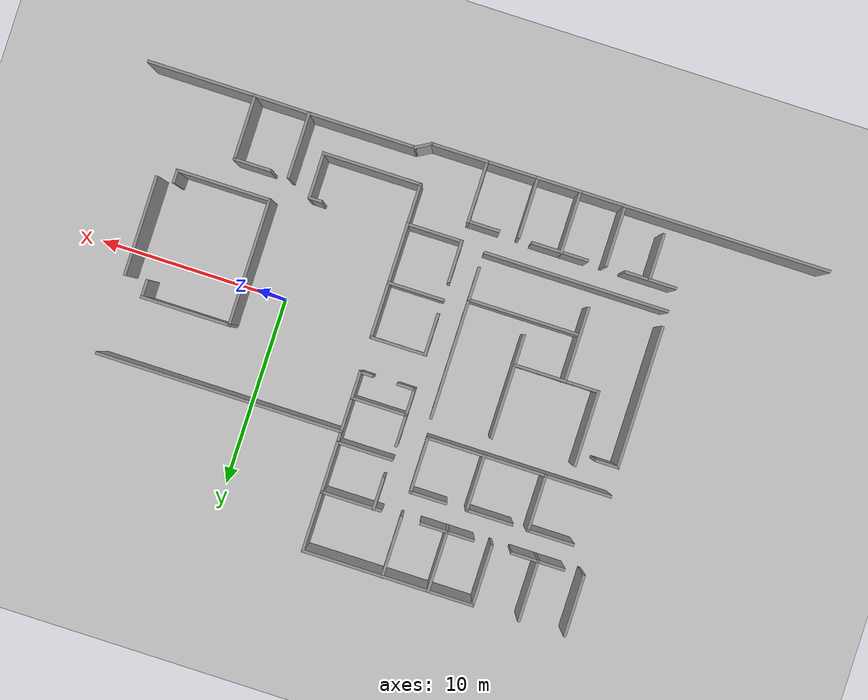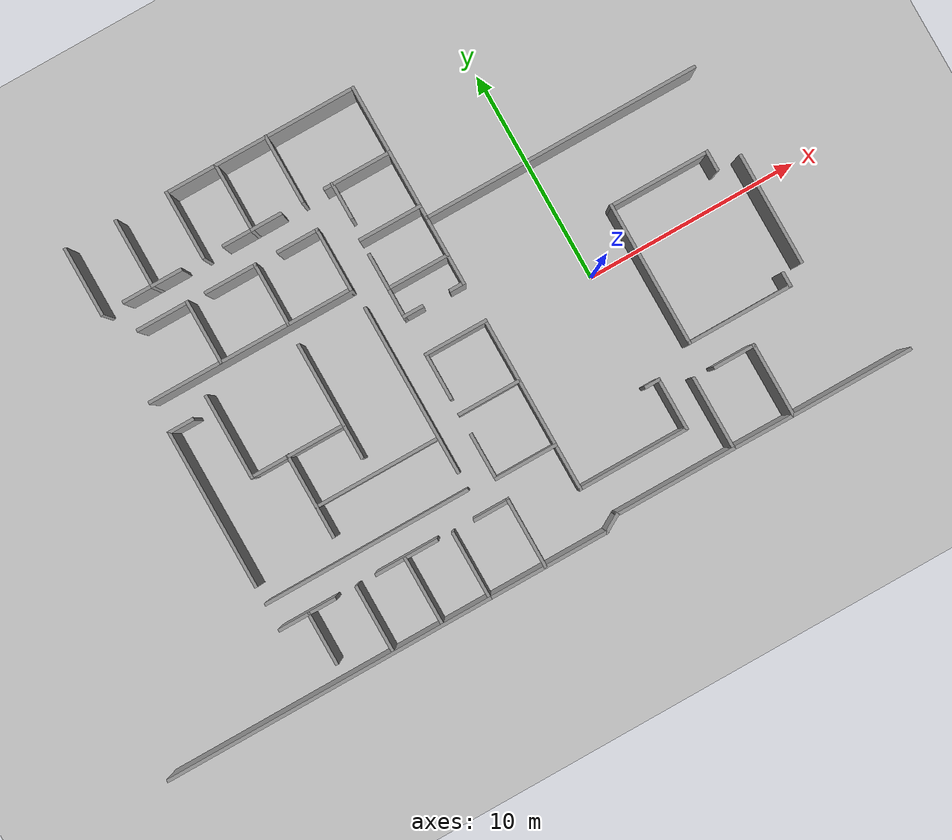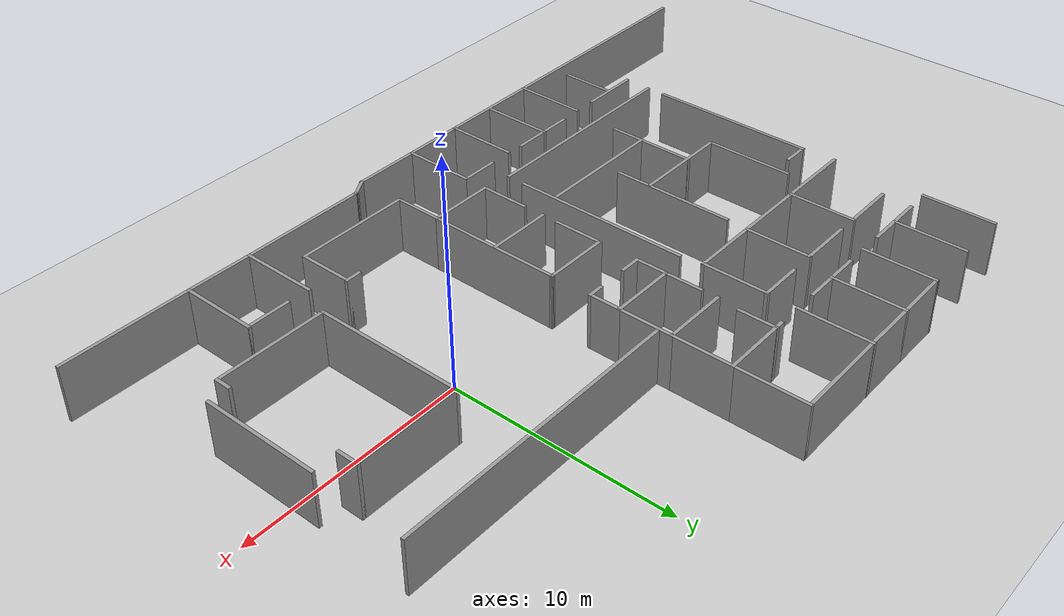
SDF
<sdf version="1.6">
 <world name="default">
  <model name="ground_plane">
   <static>1</static>
   <link name="link">
    <collision name="collision">
     <geometry><plane><normal>0 0 1</normal><size>100 100</size></plane></geometry>
     <surface>
      <contact><collide_bitmask>65535</collide_bitmask></contact>
      <friction><ode><mu>100</mu><mu2>50</mu2></ode></friction>
     </surface>
    </collision>
    <visual name="visual">
     <cast_shadows>0</cast_shadows>
     <geometry><plane><normal>0 0 1</normal><size>100 100</size></plane></geometry>
     <material>
      <script><uri>file://media/materials/scripts/gazebo.material</uri><name>Gazebo/Grey</name></script>
     </material>
    </visual>
   </link>
  </model>
  <model name="large_version">
   <pose>-3.01766 -0.701661 0 0 -0 0</pose>
   <link name="Wall_12">
    <collision name="Wall_12_Collision">
     <geometry><box><size>3.25 0.15 2.5</size></box></geometry>
     <pose>0 0 1.25 0 -0 0</pose>
    </collision>
    <visual name="Wall_12_Visual">
     <pose>0 0 1.25 0 -0 0</pose>
     <geometry><box><size>3.25 0.15 2.5</size></box></geometry>
     <material>
      <script><uri>file://media/materials/scripts/gazebo.material</uri><name>Gazebo/Grey</name></script>
      <ambient>1 1 1 1</ambient>
     </material>
     <meta><layer>0</layer></meta>
    </visual>
    <pose>-10.928 10.8658 0 0 -0 -1.5708</pose>
   </link>
   <link name="Wall_138">
    <collision name="Wall_138_Collision">
     <geometry><box><size>15.5 0.15 2.5</size></box></geometry>
     <pose>0 0 1.25 0 -0 0</pose>
    </collision>
    <visual name="Wall_138_Visual">
     <pose>0 0 1.25 0 -0 0</pose>
     <geometry><box><size>15.5 0.15 2.5</size></box></geometry>
     <material>
      <script><uri>file://media/materials/scripts/gazebo.material</uri><name>Gazebo/Grey</name></script>
      <ambient>1 1 1 1</ambient>
     </material>
     <meta><layer>0</layer></meta>
    </visual>
    <pose>-15.1727 -8.99166 0 0 -0 0</pose>
   </link>
   <link name="Wall_157">
    <collision name="Wall_157_Collision">
     <geometry><box><size>2.75 0.15 2.5</size></box></geometry>
     <pose>0 0 1.25 0 -0 0</pose>
    </collision>
    <visual name="Wall_157_Visual">
     <pose>0 0 1.25 0 -0 0</pose>
     <geometry><box><size>2.75 0.15 2.5</size></box></geometry>
     <material>
      <script><uri>file://media/materials/scripts/gazebo.material</uri><name>Gazebo/Grey</name></script>
      <ambient>1 1 1 1</ambient>
     </material>
     <meta><layer>0</layer></meta>
    </visual>
    <pose>-14.4527 -5.83091 0 0 -0 0</pose>
   </link>
   <link name="Wall_159">
    <collision name="Wall_159_Collision">
     <geometry><box><size>2.5 0.15 2.5</size></box></geometry>
     <pose>0 0 1.25 0 -0 0</pose>
    </collision>
    <visual name="Wall_159_Visual">
     <pose>0 0 1.25 0 -0 0</pose>
     <geometry><box><size>2.5 0.15 2.5</size></box></geometry>
     <material>
      <script><uri>file://media/materials/scripts/gazebo.material</uri><name>Gazebo/Grey</name></script>
      <ambient>1 1 1 1</ambient>
     </material>
     <meta><layer>0</layer></meta>
    </visual>
    <pose>-14.3882 -7.02107 0 0 -0 -1.5708</pose>
   </link>
   <link name="Wall_161">
    <collision name="Wall_161_Collision">
     <geometry><box><size>3.25 0.15 2.5</size></box></geometry>
     <pose>0 0 1.25 0 -0 0</pose>
    </collision>
    <visual name="Wall_161_Visual">
     <pose>0 0 1.25 0 -0 0</pose>
     <geometry><box><size>3.25 0.15 2.5</size></box></geometry>
     <material>
      <script><uri>file://media/materials/scripts/gazebo.material</uri><name>Gazebo/Grey</name></script>
      <ambient>1 1 1 1</ambient>
     </material>
     <meta><layer>0</layer></meta>
    </visual>
    <pose>-12.099 -7.41123 0 0 -0 -1.5708</pose>
   </link>
   <link name="Wall_163">
    <collision name="Wall_163_Collision">
     <geometry><box><size>3 0.15 2.5</size></box></geometry>
     <pose>0 0 1.25 0 -0 0</pose>
    </collision>
    <visual name="Wall_163_Visual">
     <pose>0 0 1.25 0 -0 0</pose>
     <geometry><box><size>3 0.15 2.5</size></box></geometry>
     <material>
      <script><uri>file://media/materials/scripts/gazebo.material</uri><name>Gazebo/Grey</name></script>
      <ambient>1 1 1 1</ambient>
     </material>
     <meta><layer>0</layer></meta>
    </visual>
    <pose>-9.68851 -5.80059 0 0 -0 0</pose>
   </link>
   <link name="Wall_165">
    <collision name="Wall_165_Collision">
     <geometry><box><size>3.25 0.15 2.5</size></box></geometry>
     <pose>0 0 1.25 0 -0 0</pose>
    </collision>
    <visual name="Wall_165_Visual">
     <pose>0 0 1.25 0 -0 0</pose>
     <geometry><box><size>3.25 0.15 2.5</size></box></geometry>
     <material>
      <script><uri>file://media/materials/scripts/gazebo.material</uri><name>Gazebo/Grey</name></script>
      <ambient>1 1 1 1</ambient>
     </material>
     <meta><layer>0</layer></meta>
    </visual>
    <pose>-9.74906 -7.35059 0 0 -0 -1.5708</pose>
   </link>
   <link name="Wall_167">
    <collision name="Wall_167_Collision">
     <geometry><box><size>1.75 0.15 2.5</size></box></geometry>
     <pose>0 0 1.25 0 -0 0</pose>
    </collision>
    <visual name="Wall_167_Visual">
     <pose>0 0 1.25 0 -0 0</pose>
     <geometry><box><size>1.75 0.15 2.5</size></box></geometry>
     <material>
      <script><uri>file://media/materials/scripts/gazebo.material</uri><name>Gazebo/Grey</name></script>
      <ambient>1 1 1 1</ambient>
     </material>
     <meta><layer>0</layer></meta>
    </visual>
    <pose>-5.62887 -5.84607 0 0 -0 0</pose>
   </link>
   <link name="Wall_169">
    <collision name="Wall_169_Collision">
     <geometry><box><size>3.25 0.15 2.5</size></box></geometry>
     <pose>0 0 1.25 0 -0 0</pose>
    </collision>
    <visual name="Wall_169_Visual">
     <pose>0 0 1.25 0 -0 0</pose>
     <geometry><box><size>3.25 0.15 2.5</size></box></geometry>
     <material>
      <script><uri>file://media/materials/scripts/gazebo.material</uri><name>Gazebo/Grey</name></script>
      <ambient>1 1 1 1</ambient>
     </material>
     <meta><layer>0</layer></meta>
    </visual>
    <pose>-4.82887 -7.39607 0 0 -0 -1.5708</pose>
   </link>
   <link name="Wall_171">
    <collision name="Wall_171_Collision">
     <geometry><box><size>5.75 0.15 2.5</size></box></geometry>
     <pose>0 0 1.25 0 -0 0</pose>
    </collision>
    <visual name="Wall_171_Visual">
     <pose>0 0 1.25 0 -0 0</pose>
     <geometry><box><size>5.75 0.15 2.5</size></box></geometry>
     <material>
      <script><uri>file://media/materials/scripts/gazebo.material</uri><name>Gazebo/Grey</name></script>
      <ambient>1 1 1 1</ambient>
     </material>
     <meta><layer>0</layer></meta>
    </visual>
    <pose>-4.69767 -8.99166 0 0 -0 0</pose>
   </link>
   <link name="Wall_173">
    <collision name="Wall_173_Collision">
     <geometry><box><size>3.25 0.15 2.5</size></box></geometry>
     <pose>0 0 1.25 0 -0 0</pose>
    </collision>
    <visual name="Wall_173_Visual">
     <pose>0 0 1.25 0 -0 0</pose>
     <geometry><box><size>3.25 0.15 2.5</size></box></geometry>
     <material>
      <script><uri>file://media/materials/scripts/gazebo.material</uri><name>Gazebo/Grey</name></script>
      <ambient>1 1 1 1</ambient>
     </material>
     <meta><layer>0</layer></meta>
    </visual>
    <pose>-7.49767 -7.44166 0 0 -0 1.5708</pose>
   </link>
   <link name="Wall_178">
    <collision name="Wall_178_Collision">
     <geometry><box><size>2.25 0.15 2.5</size></box></geometry>
     <pose>0 0 1.25 0 -0 0</pose>
    </collision>
    <visual name="Wall_178_Visual">
     <pose>0 0 1.25 0 -0 0</pose>
     <geometry><box><size>2.25 0.15 2.5</size></box></geometry>
     <material>
      <script><uri>file://media/materials/scripts/gazebo.material</uri><name>Gazebo/Grey</name></script>
      <ambient>1 1 1 1</ambient>
     </material>
     <meta><layer>0</layer></meta>
    </visual>
    <pose>-4.81926 -3.73255 0 0 -0 -1.5708</pose>
   </link>
   <link name="Wall_179">
    <collision name="Wall_179_Collision">
     <geometry><box><size>3 0.15 2.5</size></box></geometry>
     <pose>0 0 1.25 0 -0 0</pose>
    </collision>
    <visual name="Wall_179_Visual">
     <pose>0 0 1.25 0 -0 0</pose>
     <geometry><box><size>3 0.15 2.5</size></box></geometry>
     <material>
      <script><uri>file://media/materials/scripts/gazebo.material</uri><name>Gazebo/Grey</name></script>
      <ambient>1 1 1 1</ambient>
     </material>
     <meta><layer>0</layer></meta>
    </visual>
    <pose>-3.39426 -4.78255 0 0 -0 0</pose>
   </link>
   <link name="Wall_18">
    <collision name="Wall_18_Collision">
     <geometry><box><size>3.25 0.15 2.5</size></box></geometry>
     <pose>0 0 1.25 0 -0 0</pose>
    </collision>
    <visual name="Wall_18_Visual">
     <pose>0 0 1.25 0 -0 0</pose>
     <geometry><box><size>3.25 0.15 2.5</size></box></geometry>
     <material>
      <script><uri>file://media/materials/scripts/gazebo.material</uri><name>Gazebo/Grey</name></script>
      <ambient>1 1 1 1</ambient>
     </material>
     <meta><layer>0</layer></meta>
    </visual>
    <pose>-15.7829 10.8794 0 0 -0 -1.5708</pose>
   </link>
   <link name="Wall_181">
    <collision name="Wall_181_Collision">
     <geometry><box><size>3 0.15 2.5</size></box></geometry>
     <pose>0 0 1.25 0 -0 0</pose>
    </collision>
    <visual name="Wall_181_Visual">
     <pose>0 0 1.25 0 -0 0</pose>
     <geometry><box><size>3 0.15 2.5</size></box></geometry>
     <material>
      <script><uri>file://media/materials/scripts/gazebo.material</uri><name>Gazebo/Grey</name></script>
      <ambient>1 1 1 1</ambient>
     </material>
     <meta><layer>0</layer></meta>
    </visual>
    <pose>-3.38496 1.18797 0 0 -0 3.14159</pose>
   </link>
   <link name="Wall_182">
    <collision name="Wall_182_Collision">
     <geometry><box><size>2.25 0.15 2.5</size></box></geometry>
     <pose>0 0 1.25 0 -0 0</pose>
    </collision>
    <visual name="Wall_182_Visual">
     <pose>0 0 1.25 0 -0 0</pose>
     <geometry><box><size>2.25 0.15 2.5</size></box></geometry>
     <material>
      <script><uri>file://media/materials/scripts/gazebo.material</uri><name>Gazebo/Grey</name></script>
      <ambient>1 1 1 1</ambient>
     </material>
     <meta><layer>0</layer></meta>
    </visual>
    <pose>-4.80996 0.137968 0 0 -0 -1.5708</pose>
   </link>
   <link name="Wall_184">
    <collision name="Wall_184_Collision">
     <geometry><box><size>3 0.15 2.5</size></box></geometry>
     <pose>0 0 1.25 0 -0 0</pose>
    </collision>
    <visual name="Wall_184_Visual">
     <pose>0 0 1.25 0 -0 0</pose>
     <geometry><box><size>3 0.15 2.5</size></box></geometry>
     <material>
      <script><uri>file://media/materials/scripts/gazebo.material</uri><name>Gazebo/Grey</name></script>
      <ambient>1 1 1 1</ambient>
     </material>
     <meta><layer>0</layer></meta>
    </visual>
    <pose>-3.39426 -1.68877 0 0 -0 0</pose>
   </link>
   <link name="Wall_20">
    <collision name="Wall_20_Collision">
     <geometry><box><size>3.25 0.15 2.5</size></box></geometry>
     <pose>0 0 1.25 0 -0 0</pose>
    </collision>
    <visual name="Wall_20_Visual">
     <pose>0 0 1.25 0 -0 0</pose>
     <geometry><box><size>3.25 0.15 2.5</size></box></geometry>
     <material>
      <script><uri>file://media/materials/scripts/gazebo.material</uri><name>Gazebo/Grey</name></script>
      <ambient>1 1 1 1</ambient>
     </material>
     <meta><layer>0</layer></meta>
    </visual>
    <pose>-13.3644 10.8707 0 0 -0 -1.5708</pose>
   </link>
   <link name="Wall_203">
    <collision name="Wall_203_Collision">
     <geometry><box><size>7.5 0.15 2.5</size></box></geometry>
     <pose>0 0 1.25 0 -0 0</pose>
    </collision>
    <visual name="Wall_203_Visual">
     <pose>0 0 1.25 0 -0 0</pose>
     <geometry><box><size>7.5 0.15 2.5</size></box></geometry>
     <material>
      <script><uri>file://media/materials/scripts/gazebo.material</uri><name>Gazebo/Grey</name></script>
      <ambient>1 1 1 1</ambient>
     </material>
     <meta><layer>0</layer></meta>
    </visual>
    <pose>-15.7452 -0.05846 0 0 -0 -1.5708</pose>
   </link>
   <link name="Wall_205">
    <collision name="Wall_205_Collision">
     <geometry><box><size>9.75 0.15 2.5</size></box></geometry>
     <pose>0 0 1.25 0 -0 0</pose>
    </collision>
    <visual name="Wall_205_Visual">
     <pose>0 0 1.25 0 -0 0</pose>
     <geometry><box><size>9.75 0.15 2.5</size></box></geometry>
     <material>
      <script><uri>file://media/materials/scripts/gazebo.material</uri><name>Gazebo/Grey</name></script>
      <ambient>1 1 1 1</ambient>
     </material>
     <meta><layer>0</layer></meta>
    </visual>
    <pose>-10.9187 -4.60345 0 0 -0 0</pose>
   </link>
   <link name="Wall_207">
    <collision name="Wall_207_Collision">
     <geometry><box><size>8 0.15 2.5</size></box></geometry>
     <pose>0 0 1.25 0 -0 0</pose>
    </collision>
    <visual name="Wall_207_Visual">
     <pose>0 0 1.25 0 -0 0</pose>
     <geometry><box><size>8 0.15 2.5</size></box></geometry>
     <material>
      <script><uri>file://media/materials/scripts/gazebo.material</uri><name>Gazebo/Grey</name></script>
      <ambient>1 1 1 1</ambient>
     </material>
     <meta><layer>0</layer></meta>
    </visual>
    <pose>-6.06687 0.16883 0 0 -0 -1.5708</pose>
   </link>
   <link name="Wall_209">
    <collision name="Wall_209_Collision">
     <geometry><box><size>6 0.15 2.5</size></box></geometry>
     <pose>0 0 1.25 0 -0 0</pose>
    </collision>
    <visual name="Wall_209_Visual">
     <pose>0 0 1.25 0 -0 0</pose>
     <geometry><box><size>6 0.15 2.5</size></box></geometry>
     <material>
      <script><uri>file://media/materials/scripts/gazebo.material</uri><name>Gazebo/Grey</name></script>
      <ambient>1 1 1 1</ambient>
     </material>
     <meta><layer>0</layer></meta>
    </visual>
    <pose>-8.99188 -2.11094 0 0 -0 3.14159</pose>
   </link>
   <link name="Wall_211">
    <collision name="Wall_211_Collision">
     <geometry><box><size>5.5 0.15 2.5</size></box></geometry>
     <pose>0 0 1.25 0 -0 0</pose>
    </collision>
    <visual name="Wall_211_Visual">
     <pose>0 0 1.25 0 -0 0</pose>
     <geometry><box><size>5.5 0.15 2.5</size></box></geometry>
     <material>
      <script><uri>file://media/materials/scripts/gazebo.material</uri><name>Gazebo/Grey</name></script>
      <ambient>1 1 1 1</ambient>
     </material>
     <meta><layer>0</layer></meta>
    </visual>
    <pose>-9.25386 1.44209 0 0 -0 -1.5708</pose>
   </link>
   <link name="Wall_213">
    <collision name="Wall_213_Collision">
     <geometry><box><size>4 0.15 2.5</size></box></geometry>
     <pose>0 0 1.25 0 -0 0</pose>
    </collision>
    <visual name="Wall_213_Visual">
     <pose>0 0 1.25 0 -0 0</pose>
     <geometry><box><size>4 0.15 2.5</size></box></geometry>
     <material>
      <script><uri>file://media/materials/scripts/gazebo.material</uri><name>Gazebo/Grey</name></script>
      <ambient>1 1 1 1</ambient>
     </material>
     <meta><layer>0</layer></meta>
    </visual>
    <pose>-13.6649 2.23218 0 0 -0 -1.5708</pose>
   </link>
   <link name="Wall_214">
    <collision name="Wall_214_Collision">
     <geometry><box><size>4.5 0.15 2.5</size></box></geometry>
     <pose>0 0 1.25 0 -0 0</pose>
    </collision>
    <visual name="Wall_214_Visual">
     <pose>0 0 1.25 0 -0 0</pose>
     <geometry><box><size>4.5 0.15 2.5</size></box></geometry>
     <material>
      <script><uri>file://media/materials/scripts/gazebo.material</uri><name>Gazebo/Grey</name></script>
      <ambient>1 1 1 1</ambient>
     </material>
     <meta><layer>0</layer></meta>
    </visual>
    <pose>-11.4899 0.307185 0 0 -0 0</pose>
   </link>
   <link name="Wall_216">
    <collision name="Wall_216_Collision">
     <geometry><box><size>4 0.15 2.5</size></box></geometry>
     <pose>0 0 1.25 0 -0 0</pose>
    </collision>
    <visual name="Wall_216_Visual">
     <pose>0 0 1.25 0 -0 0</pose>
     <geometry><box><size>4 0.15 2.5</size></box></geometry>
     <material>
      <script><uri>file://media/materials/scripts/gazebo.material</uri><name>Gazebo/Grey</name></script>
      <ambient>1 1 1 1</ambient>
     </material>
     <meta><layer>0</layer></meta>
    </visual>
    <pose>-11.9141 -1.59917 0 0 -0 -1.5708</pose>
   </link>
   <link name="Wall_218">
    <collision name="Wall_218_Collision">
     <geometry><box><size>1.25 0.15 2.5</size></box></geometry>
     <pose>0 0 1.25 0 -0 0</pose>
    </collision>
    <visual name="Wall_218_Visual">
     <pose>0 0 1.25 0 -0 0</pose>
     <geometry><box><size>1.25 0.15 2.5</size></box></geometry>
     <material>
      <script><uri>file://media/materials/scripts/gazebo.material</uri><name>Gazebo/Grey</name></script>
      <ambient>1 1 1 1</ambient>
     </material>
     <meta><layer>0</layer></meta>
    </visual>
    <pose>-15.1952 3.61654 0 0 -0 0</pose>
   </link>
   <link name="Wall_220">
    <collision name="Wall_220_Collision">
     <geometry><box><size>2.25 0.15 2.5</size></box></geometry>
     <pose>0 0 1.25 0 -0 0</pose>
    </collision>
    <visual name="Wall_220_Visual">
     <pose>0 0 1.25 0 -0 0</pose>
     <geometry><box><size>2.25 0.15 2.5</size></box></geometry>
     <material>
      <script><uri>file://media/materials/scripts/gazebo.material</uri><name>Gazebo/Grey</name></script>
      <ambient>1 1 1 1</ambient>
     </material>
     <meta><layer>0</layer></meta>
    </visual>
    <pose>-1.96926 -5.83255 0 0 -0 -1.5708</pose>
   </link>
   <link name="Wall_221">
    <collision name="Wall_221_Collision">
     <geometry><box><size>5.25 0.15 2.5</size></box></geometry>
     <pose>0 0 1.25 0 -0 0</pose>
    </collision>
    <visual name="Wall_221_Visual">
     <pose>0 0 1.25 0 -0 0</pose>
     <geometry><box><size>5.25 0.15 2.5</size></box></geometry>
     <material>
      <script><uri>file://media/materials/scripts/gazebo.material</uri><name>Gazebo/Grey</name></script>
      <ambient>1 1 1 1</ambient>
     </material>
     <meta><layer>0</layer></meta>
    </visual>
    <pose>0.58074 -6.88255 0 0 -0 0</pose>
   </link>
   <link name="Wall_222">
    <collision name="Wall_222_Collision">
     <geometry><box><size>2.5 0.15 2.5</size></box></geometry>
     <pose>0 0 1.25 0 -0 0</pose>
    </collision>
    <visual name="Wall_222_Visual">
     <pose>0 0 1.25 0 -0 0</pose>
     <geometry><box><size>2.5 0.15 2.5</size></box></geometry>
     <material>
      <script><uri>file://media/materials/scripts/gazebo.material</uri><name>Gazebo/Grey</name></script>
      <ambient>1 1 1 1</ambient>
     </material>
     <meta><layer>0</layer></meta>
    </visual>
    <pose>3.13074 -5.70755 0 0 -0 1.5708</pose>
   </link>
   <link name="Wall_223">
    <collision name="Wall_223_Collision">
     <geometry><box><size>0.75 0.15 2.5</size></box></geometry>
     <pose>0 0 1.25 0 -0 0</pose>
    </collision>
    <visual name="Wall_223_Visual">
     <pose>0 0 1.25 0 -0 0</pose>
     <geometry><box><size>0.75 0.15 2.5</size></box></geometry>
     <material>
      <script><uri>file://media/materials/scripts/gazebo.material</uri><name>Gazebo/Grey</name></script>
      <ambient>1 1 1 1</ambient>
     </material>
     <meta><layer>0</layer></meta>
    </visual>
    <pose>2.83074 -4.53255 0 0 -0 3.14159</pose>
   </link>
   <link name="Wall_225">
    <collision name="Wall_225_Collision">
     <geometry><box><size>6.12052 0.15 2.5</size></box></geometry>
     <pose>0 0 1.25 0 -0 0</pose>
    </collision>
    <visual name="Wall_225_Visual">
     <pose>0 0 1.25 0 -0 0</pose>
     <geometry><box><size>6.12052 0.15 2.5</size></box></geometry>
     <material>
      <script><uri>file://media/materials/scripts/gazebo.material</uri><name>Gazebo/Grey</name></script>
      <ambient>1 1 1 1</ambient>
     </material>
     <meta><layer>0</layer></meta>
    </visual>
    <pose>-1.96461 -1.79729 0 0 -0 -1.57235</pose>
   </link>
   <link name="Wall_227">
    <collision name="Wall_227_Collision">
     <geometry><box><size>13 0.15 2.5</size></box></geometry>
     <pose>0 0 1.25 0 -0 0</pose>
    </collision>
    <visual name="Wall_227_Visual">
     <pose>0 0 1.25 0 -0 0</pose>
     <geometry><box><size>13 0.15 2.5</size></box></geometry>
     <material>
      <script><uri>file://media/materials/scripts/gazebo.material</uri><name>Gazebo/Grey</name></script>
      <ambient>1 1 1 1</ambient>
     </material>
     <meta><layer>0</layer></meta>
    </visual>
    <pose>4.4619 6.1501 0 0 -0 0</pose>
   </link>
   <link name="Wall_251">
    <collision name="Wall_251_Collision">
     <geometry><box><size>4.75 0.15 2.5</size></box></geometry>
     <pose>0 0 1.25 0 -0 0</pose>
    </collision>
    <visual name="Wall_251_Visual">
     <pose>0 0 1.25 0 -0 0</pose>
     <geometry><box><size>4.75 0.15 2.5</size></box></geometry>
     <material>
      <script><uri>file://media/materials/scripts/gazebo.material</uri><name>Gazebo/Grey</name></script>
      <ambient>1 1 1 1</ambient>
     </material>
     <meta><layer>0</layer></meta>
    </visual>
    <pose>7.30798 2.78184 0 0 -0 0</pose>
   </link>
   <link name="Wall_252">
    <collision name="Wall_252_Collision">
     <geometry><box><size>1 0.15 2.5</size></box></geometry>
     <pose>0 0 1.25 0 -0 0</pose>
    </collision>
    <visual name="Wall_252_Visual">
     <pose>0 0 1.25 0 -0 0</pose>
     <geometry><box><size>1 0.15 2.5</size></box></geometry>
     <material>
      <script><uri>file://media/materials/scripts/gazebo.material</uri><name>Gazebo/Grey</name></script>
      <ambient>1 1 1 1</ambient>
     </material>
     <meta><layer>0</layer></meta>
    </visual>
    <pose>9.60798 2.35684 0 0 -0 -1.5708</pose>
   </link>
   <link name="Wall_254">
    <collision name="Wall_254_Collision">
     <geometry><box><size>6.75 0.15 2.5</size></box></geometry>
     <pose>0 0 1.25 0 -0 0</pose>
    </collision>
    <visual name="Wall_254_Visual">
     <pose>0 0 1.25 0 -0 0</pose>
     <geometry><box><size>6.75 0.15 2.5</size></box></geometry>
     <material>
      <script><uri>file://media/materials/scripts/gazebo.material</uri><name>Gazebo/Grey</name></script>
      <ambient>1 1 1 1</ambient>
     </material>
     <meta><layer>0</layer></meta>
    </visual>
    <pose>5.00798 -0.518157 0 0 -0 -1.5708</pose>
   </link>
   <link name="Wall_255">
    <collision name="Wall_255_Collision">
     <geometry><box><size>5 0.15 2.5</size></box></geometry>
     <pose>0 0 1.25 0 -0 0</pose>
    </collision>
    <visual name="Wall_255_Visual">
     <pose>0 0 1.25 0 -0 0</pose>
     <geometry><box><size>5 0.15 2.5</size></box></geometry>
     <material>
      <script><uri>file://media/materials/scripts/gazebo.material</uri><name>Gazebo/Grey</name></script>
      <ambient>1 1 1 1</ambient>
     </material>
     <meta><layer>0</layer></meta>
    </visual>
    <pose>7.43298 -3.81816 0 0 -0 0</pose>
   </link>
   <link name="Wall_256">
    <collision name="Wall_256_Collision">
     <geometry><box><size>0.75 0.15 2.5</size></box></geometry>
     <pose>0 0 1.25 0 -0 0</pose>
    </collision>
    <visual name="Wall_256_Visual">
     <pose>0 0 1.25 0 -0 0</pose>
     <geometry><box><size>0.75 0.15 2.5</size></box></geometry>
     <material>
      <script><uri>file://media/materials/scripts/gazebo.material</uri><name>Gazebo/Grey</name></script>
      <ambient>1 1 1 1</ambient>
     </material>
     <meta><layer>0</layer></meta>
    </visual>
    <pose>9.85798 -3.51816 0 0 -0 1.5708</pose>
   </link>
   <link name="Wall_258">
    <collision name="Wall_258_Collision">
     <geometry><box><size>5.25 0.15 2.5</size></box></geometry>
     <pose>0 0 1.25 0 -0 0</pose>
    </collision>
    <visual name="Wall_258_Visual">
     <pose>0 0 1.25 0 -0 0</pose>
     <geometry><box><size>5.25 0.15 2.5</size></box></geometry>
     <material>
      <script><uri>file://media/materials/scripts/gazebo.material</uri><name>Gazebo/Grey</name></script>
      <ambient>1 1 1 1</ambient>
     </material>
     <meta><layer>0</layer></meta>
    </visual>
    <pose>10.758 -0.617491 0 0 -0 1.5708</pose>
   </link>
   <link name="Wall_272">
    <collision name="Wall_272_Collision">
     <geometry><box><size>1 0.15 2.5</size></box></geometry>
     <pose>0 0 1.25 0 -0 0</pose>
    </collision>
    <visual name="Wall_272_Visual">
     <pose>0 0 1.25 0 -0 0</pose>
     <geometry><box><size>1 0.15 2.5</size></box></geometry>
     <material>
      <script><uri>file://media/materials/scripts/gazebo.material</uri><name>Gazebo/Grey</name></script>
      <ambient>1 1 1 1</ambient>
     </material>
     <meta><layer>0</layer></meta>
    </visual>
    <pose>-1.52961 -8.77916 0 0 -0 0.523599</pose>
   </link>
   <link name="Wall_273">
    <collision name="Wall_273_Collision">
     <geometry><box><size>5.75 0.15 2.5</size></box></geometry>
     <pose>0 0 1.25 0 -0 0</pose>
    </collision>
    <visual name="Wall_273_Visual">
     <pose>0 0 1.25 0 -0 0</pose>
     <geometry><box><size>5.75 0.15 2.5</size></box></geometry>
     <material>
      <script><uri>file://media/materials/scripts/gazebo.material</uri><name>Gazebo/Grey</name></script>
      <ambient>1 1 1 1</ambient>
     </material>
     <meta><layer>0</layer></meta>
    </visual>
    <pose>1.63845 -8.56666 0 0 -0 0</pose>
   </link>
   <link name="Wall_275">
    <collision name="Wall_275_Collision">
     <geometry><box><size>3.5 0.15 2.5</size></box></geometry>
     <pose>0 0 1.25 0 -0 0</pose>
    </collision>
    <visual name="Wall_275_Visual">
     <pose>0 0 1.25 0 -0 0</pose>
     <geometry><box><size>3.5 0.15 2.5</size></box></geometry>
     <material>
      <script><uri>file://media/materials/scripts/gazebo.material</uri><name>Gazebo/Grey</name></script>
      <ambient>1 1 1 1</ambient>
     </material>
     <meta><layer>0</layer></meta>
    </visual>
    <pose>4.43845 -6.89166 0 0 -0 1.5708</pose>
   </link>
   <link name="Wall_277">
    <collision name="Wall_277_Collision">
     <geometry><box><size>2 0.15 2.5</size></box></geometry>
     <pose>0 0 1.25 0 -0 0</pose>
    </collision>
    <visual name="Wall_277_Visual">
     <pose>0 0 1.25 0 -0 0</pose>
     <geometry><box><size>2 0.15 2.5</size></box></geometry>
     <material>
      <script><uri>file://media/materials/scripts/gazebo.material</uri><name>Gazebo/Grey</name></script>
      <ambient>1 1 1 1</ambient>
     </material>
     <meta><layer>0</layer></meta>
    </visual>
    <pose>6.37625 -5.23701 0 0 -0 0</pose>
   </link>
   <link name="Wall_279">
    <collision name="Wall_279_Collision">
     <geometry><box><size>3.5 0.15 2.5</size></box></geometry>
     <pose>0 0 1.25 0 -0 0</pose>
    </collision>
    <visual name="Wall_279_Visual">
     <pose>0 0 1.25 0 -0 0</pose>
     <geometry><box><size>3.5 0.15 2.5</size></box></geometry>
     <material>
      <script><uri>file://media/materials/scripts/gazebo.material</uri><name>Gazebo/Grey</name></script>
      <ambient>1 1 1 1</ambient>
     </material>
     <meta><layer>0</layer></meta>
    </visual>
    <pose>7.30125 -6.91201 0 0 -0 -1.5708</pose>
   </link>
   <link name="Wall_28">
    <collision name="Wall_28_Collision">
     <geometry><box><size>1.5 0.15 2.5</size></box></geometry>
     <pose>0 0 1.25 0 -0 0</pose>
    </collision>
    <visual name="Wall_28_Visual">
     <pose>0 0 1.25 0 -0 0</pose>
     <geometry><box><size>1.5 0.15 2.5</size></box></geometry>
     <material>
      <script><uri>file://media/materials/scripts/gazebo.material</uri><name>Gazebo/Grey</name></script>
      <ambient>1 1 1 1</ambient>
     </material>
     <meta><layer>0</layer></meta>
    </visual>
    <pose>-14.0394 9.32072 0 0 -0 3.14159</pose>
   </link>
   <link name="Wall_280">
    <collision name="Wall_280_Collision">
     <geometry><box><size>3.01287 0.15 2.5</size></box></geometry>
     <pose>0 0 1.25 0 -0 0</pose>
    </collision>
    <visual name="Wall_280_Visual">
     <pose>0 0 1.25 0 -0 0</pose>
     <geometry><box><size>3.01287 0.15 2.5</size></box></geometry>
     <material>
      <script><uri>file://media/materials/scripts/gazebo.material</uri><name>Gazebo/Grey</name></script>
      <ambient>1 1 1 1</ambient>
     </material>
     <meta><layer>0</layer></meta>
    </visual>
    <pose>5.86985 -8.57683 0 0 -0 3.13449</pose>
   </link>
   <link name="Wall_288">
    <collision name="Wall_288_Collision">
     <geometry><box><size>5.75 0.15 2.5</size></box></geometry>
     <pose>0 0 1.25 0 -0 0</pose>
    </collision>
    <visual name="Wall_288_Visual">
     <pose>0 0 1.25 0 -0 0</pose>
     <geometry><box><size>5.75 0.15 2.5</size></box></geometry>
     <material>
      <script><uri>file://media/materials/scripts/gazebo.material</uri><name>Gazebo/Grey</name></script>
      <ambient>1 1 1 1</ambient>
     </material>
     <meta><layer>0</layer></meta>
    </visual>
    <pose>10.1012 -8.58701 0 0 -0 0</pose>
   </link>
   <link name="Wall_30">
    <collision name="Wall_30_Collision">
     <geometry><box><size>1.5 0.15 2.5</size></box></geometry>
     <pose>0 0 1.25 0 -0 0</pose>
    </collision>
    <visual name="Wall_30_Visual">
     <pose>0 0 1.25 0 -0 0</pose>
     <geometry><box><size>1.5 0.15 2.5</size></box></geometry>
     <material>
      <script><uri>file://media/materials/scripts/gazebo.material</uri><name>Gazebo/Grey</name></script>
      <ambient>1 1 1 1</ambient>
     </material>
     <meta><layer>0</layer></meta>
    </visual>
    <pose>-12.6894 9.32072 0 0 -0 0</pose>
   </link>
   <link name="Wall_33">
    <collision name="Wall_33_Collision">
     <geometry><box><size>2.5 0.15 2.5</size></box></geometry>
     <pose>0 0 1.25 0 -0 0</pose>
    </collision>
    <visual name="Wall_33_Visual">
     <pose>0 0 1.25 0 -0 0</pose>
     <geometry><box><size>2.5 0.15 2.5</size></box></geometry>
     <material>
      <script><uri>file://media/materials/scripts/gazebo.material</uri><name>Gazebo/Grey</name></script>
      <ambient>1 1 1 1</ambient>
     </material>
     <meta><layer>0</layer></meta>
    </visual>
    <pose>-9.75301 12.4158 0 0 -0 0</pose>
   </link>
   <link name="Wall_34">
    <collision name="Wall_34_Collision">
     <geometry><box><size>3.25 0.15 2.5</size></box></geometry>
     <pose>0 0 1.25 0 -0 0</pose>
    </collision>
    <visual name="Wall_34_Visual">
     <pose>0 0 1.25 0 -0 0</pose>
     <geometry><box><size>3.25 0.15 2.5</size></box></geometry>
     <material>
      <script><uri>file://media/materials/scripts/gazebo.material</uri><name>Gazebo/Grey</name></script>
      <ambient>1 1 1 1</ambient>
     </material>
     <meta><layer>0</layer></meta>
    </visual>
    <pose>-8.57801 10.8658 0 0 -0 -1.5708</pose>
   </link>
   <link name="Wall_35">
    <collision name="Wall_35_Collision">
     <geometry><box><size>1.5 0.15 2.5</size></box></geometry>
     <pose>0 0 1.25 0 -0 0</pose>
    </collision>
    <visual name="Wall_35_Visual">
     <pose>0 0 1.25 0 -0 0</pose>
     <geometry><box><size>1.5 0.15 2.5</size></box></geometry>
     <material>
      <script><uri>file://media/materials/scripts/gazebo.material</uri><name>Gazebo/Grey</name></script>
      <ambient>1 1 1 1</ambient>
     </material>
     <meta><layer>0</layer></meta>
    </visual>
    <pose>-9.25301 9.31583 0 0 -0 3.14159</pose>
   </link>
   <link name="Wall_37">
    <collision name="Wall_37_Collision">
     <geometry><box><size>6.75 0.15 2.5</size></box></geometry>
     <pose>0 0 1.25 0 -0 0</pose>
    </collision>
    <visual name="Wall_37_Visual">
     <pose>0 0 1.25 0 -0 0</pose>
     <geometry><box><size>6.75 0.15 2.5</size></box></geometry>
     <material>
      <script><uri>file://media/materials/scripts/gazebo.material</uri><name>Gazebo/Grey</name></script>
      <ambient>1 1 1 1</ambient>
     </material>
     <meta><layer>0</layer></meta>
    </visual>
    <pose>-5.27801 12.4158 0 0 -0 0</pose>
   </link>
   <link name="Wall_38">
    <collision name="Wall_38_Collision">
     <geometry><box><size>3.25 0.15 2.5</size></box></geometry>
     <pose>0 0 1.25 0 -0 0</pose>
    </collision>
    <visual name="Wall_38_Visual">
     <pose>0 0 1.25 0 -0 0</pose>
     <geometry><box><size>3.25 0.15 2.5</size></box></geometry>
     <material>
      <script><uri>file://media/materials/scripts/gazebo.material</uri><name>Gazebo/Grey</name></script>
      <ambient>1 1 1 1</ambient>
     </material>
     <meta><layer>0</layer></meta>
    </visual>
    <pose>-1.97801 10.8658 0 0 -0 -1.5708</pose>
   </link>
   <link name="Wall_39">
    <collision name="Wall_39_Collision">
     <geometry><box><size>3.25 0.15 2.5</size></box></geometry>
     <pose>0 0 1.25 0 -0 0</pose>
    </collision>
    <visual name="Wall_39_Visual">
     <pose>0 0 1.25 0 -0 0</pose>
     <geometry><box><size>3.25 0.15 2.5</size></box></geometry>
     <material>
      <script><uri>file://media/materials/scripts/gazebo.material</uri><name>Gazebo/Grey</name></script>
      <ambient>1 1 1 1</ambient>
     </material>
     <meta><layer>0</layer></meta>
    </visual>
    <pose>-3.52801 9.31583 0 0 -0 3.14159</pose>
   </link>
   <link name="Wall_41">
    <collision name="Wall_41_Collision">
     <geometry><box><size>1.5 0.15 2.5</size></box></geometry>
     <pose>0 0 1.25 0 -0 0</pose>
    </collision>
    <visual name="Wall_41_Visual">
     <pose>0 0 1.25 0 -0 0</pose>
     <geometry><box><size>1.5 0.15 2.5</size></box></geometry>
     <material>
      <script><uri>file://media/materials/scripts/gazebo.material</uri><name>Gazebo/Grey</name></script>
      <ambient>1 1 1 1</ambient>
     </material>
     <meta><layer>0</layer></meta>
    </visual>
    <pose>-7.90301 9.31583 0 0 -0 0</pose>
   </link>
   <link name="Wall_43">
    <collision name="Wall_43_Collision">
     <geometry><box><size>3.25 0.15 2.5</size></box></geometry>
     <pose>0 0 1.25 0 -0 0</pose>
    </collision>
    <visual name="Wall_43_Visual">
     <pose>0 0 1.25 0 -0 0</pose>
     <geometry><box><size>3.25 0.15 2.5</size></box></geometry>
     <material>
      <script><uri>file://media/materials/scripts/gazebo.material</uri><name>Gazebo/Grey</name></script>
      <ambient>1 1 1 1</ambient>
     </material>
     <meta><layer>0</layer></meta>
    </visual>
    <pose>-6.16987 10.8794 0 0 -0 -1.5708</pose>
   </link>
   <link name="Wall_46">
    <collision name="Wall_46_Collision">
     <geometry><box><size>1.75 0.15 2.5</size></box></geometry>
     <pose>0 0 1.25 0 -0 0</pose>
    </collision>
    <visual name="Wall_46_Visual">
     <pose>0 0 1.25 0 -0 0</pose>
     <geometry><box><size>1.75 0.15 2.5</size></box></geometry>
     <material>
      <script><uri>file://media/materials/scripts/gazebo.material</uri><name>Gazebo/Grey</name></script>
      <ambient>1 1 1 1</ambient>
     </material>
     <meta><layer>0</layer></meta>
    </visual>
    <pose>-4.71361 8.53486 0 0 -0 -1.5708</pose>
   </link>
   <link name="Wall_48">
    <collision name="Wall_48_Collision">
     <geometry><box><size>2.75 0.15 2.5</size></box></geometry>
     <pose>0 0 1.25 0 -0 0</pose>
    </collision>
    <visual name="Wall_48_Visual">
     <pose>0 0 1.25 0 -0 0</pose>
     <geometry><box><size>2.75 0.15 2.5</size></box></geometry>
     <material>
      <script><uri>file://media/materials/scripts/gazebo.material</uri><name>Gazebo/Grey</name></script>
      <ambient>1 1 1 1</ambient>
     </material>
     <meta><layer>0</layer></meta>
    </visual>
    <pose>-1.97801 8.01583 0 0 -0 -1.5708</pose>
   </link>
   <link name="Wall_49">
    <collision name="Wall_49_Collision">
     <geometry><box><size>3 0.15 2.5</size></box></geometry>
     <pose>0 0 1.25 0 -0 0</pose>
    </collision>
    <visual name="Wall_49_Visual">
     <pose>0 0 1.25 0 -0 0</pose>
     <geometry><box><size>3 0.15 2.5</size></box></geometry>
     <material>
      <script><uri>file://media/materials/scripts/gazebo.material</uri><name>Gazebo/Grey</name></script>
      <ambient>1 1 1 1</ambient>
     </material>
     <meta><layer>0</layer></meta>
    </visual>
    <pose>-3.40301 6.71583 0 0 -0 3.14159</pose>
   </link>
   <link name="Wall_51">
    <collision name="Wall_51_Collision">
     <geometry><box><size>2.5 0.15 2.5</size></box></geometry>
     <pose>0 0 1.25 0 -0 0</pose>
    </collision>
    <visual name="Wall_51_Visual">
     <pose>0 0 1.25 0 -0 0</pose>
     <geometry><box><size>2.5 0.15 2.5</size></box></geometry>
     <material>
      <script><uri>file://media/materials/scripts/gazebo.material</uri><name>Gazebo/Grey</name></script>
      <ambient>1 1 1 1</ambient>
     </material>
     <meta><layer>0</layer></meta>
    </visual>
    <pose>-1.97801 5.54083 0 0 -0 -1.5708</pose>
   </link>
   <link name="Wall_52">
    <collision name="Wall_52_Collision">
     <geometry><box><size>3 0.15 2.5</size></box></geometry>
     <pose>0 0 1.25 0 -0 0</pose>
    </collision>
    <visual name="Wall_52_Visual">
     <pose>0 0 1.25 0 -0 0</pose>
     <geometry><box><size>3 0.15 2.5</size></box></geometry>
     <material>
      <script><uri>file://media/materials/scripts/gazebo.material</uri><name>Gazebo/Grey</name></script>
      <ambient>1 1 1 1</ambient>
     </material>
     <meta><layer>0</layer></meta>
    </visual>
    <pose>-3.40301 4.36583 0 0 -0 3.14159</pose>
   </link>
   <link name="Wall_53">
    <collision name="Wall_53_Collision">
     <geometry><box><size>1.75 0.15 2.5</size></box></geometry>
     <pose>0 0 1.25 0 -0 0</pose>
    </collision>
    <visual name="Wall_53_Visual">
     <pose>0 0 1.25 0 -0 0</pose>
     <geometry><box><size>1.75 0.15 2.5</size></box></geometry>
     <material>
      <script><uri>file://media/materials/scripts/gazebo.material</uri><name>Gazebo/Grey</name></script>
      <ambient>1 1 1 1</ambient>
     </material>
     <meta><layer>0</layer></meta>
    </visual>
    <pose>-4.82801 5.16583 0 0 -0 1.5708</pose>
   </link>
   <link name="Wall_55">
    <collision name="Wall_55_Collision">
     <geometry><box><size>1.5 0.15 2.5</size></box></geometry>
     <pose>0 0 1.25 0 -0 0</pose>
    </collision>
    <visual name="Wall_55_Visual">
     <pose>0 0 1.25 0 -0 0</pose>
     <geometry><box><size>1.5 0.15 2.5</size></box></geometry>
     <material>
      <script><uri>file://media/materials/scripts/gazebo.material</uri><name>Gazebo/Grey</name></script>
      <ambient>1 1 1 1</ambient>
     </material>
     <meta><layer>0</layer></meta>
    </visual>
    <pose>-1.97801 3.69083 0 0 -0 -1.5708</pose>
   </link>
   <link name="Wall_56">
    <collision name="Wall_56_Collision">
     <geometry><box><size>0.75 0.15 2.5</size></box></geometry>
     <pose>0 0 1.25 0 -0 0</pose>
    </collision>
    <visual name="Wall_56_Visual">
     <pose>0 0 1.25 0 -0 0</pose>
     <geometry><box><size>0.75 0.15 2.5</size></box></geometry>
     <material>
      <script><uri>file://media/materials/scripts/gazebo.material</uri><name>Gazebo/Grey</name></script>
      <ambient>1 1 1 1</ambient>
     </material>
     <meta><layer>0</layer></meta>
    </visual>
    <pose>-2.27801 3.01583 0 0 -0 3.14159</pose>
   </link>
   <link name="Wall_58">
    <collision name="Wall_58_Collision">
     <geometry><box><size>1.5 0.15 2.5</size></box></geometry>
     <pose>0 0 1.25 0 -0 0</pose>
    </collision>
    <visual name="Wall_58_Visual">
     <pose>0 0 1.25 0 -0 0</pose>
     <geometry><box><size>1.5 0.15 2.5</size></box></geometry>
     <material>
      <script><uri>file://media/materials/scripts/gazebo.material</uri><name>Gazebo/Grey</name></script>
      <ambient>1 1 1 1</ambient>
     </material>
     <meta><layer>0</layer></meta>
    </visual>
    <pose>-4.82801 3.69083 0 0 -0 -1.5708</pose>
   </link>
   <link name="Wall_59">
    <collision name="Wall_59_Collision">
     <geometry><box><size>1 0.15 2.5</size></box></geometry>
     <pose>0 0 1.25 0 -0 0</pose>
    </collision>
    <visual name="Wall_59_Visual">
     <pose>0 0 1.25 0 -0 0</pose>
     <geometry><box><size>1 0.15 2.5</size></box></geometry>
     <material>
      <script><uri>file://media/materials/scripts/gazebo.material</uri><name>Gazebo/Grey</name></script>
      <ambient>1 1 1 1</ambient>
     </material>
     <meta><layer>0</layer></meta>
    </visual>
    <pose>-4.40301 3.01583 0 0 -0 0</pose>
   </link>
   <link name="Wall_62">
    <collision name="Wall_62_Collision">
     <geometry><box><size>9.75 0.15 2.5</size></box></geometry>
     <pose>0 0 1.25 0 -0 0</pose>
    </collision>
    <visual name="Wall_62_Visual">
     <pose>0 0 1.25 0 -0 0</pose>
     <geometry><box><size>9.75 0.15 2.5</size></box></geometry>
     <material>
      <script><uri>file://media/materials/scripts/gazebo.material</uri><name>Gazebo/Grey</name></script>
      <ambient>1 1 1 1</ambient>
     </material>
     <meta><layer>0</layer></meta>
    </visual>
    <pose>-11.0193 5.11786 0 0 -0 0</pose>
   </link>
   <link name="Wall_63">
    <collision name="Wall_63_Collision">
     <geometry><box><size>3 0.15 2.5</size></box></geometry>
     <pose>0 0 1.25 0 -0 0</pose>
    </collision>
    <visual name="Wall_63_Visual">
     <pose>0 0 1.25 0 -0 0</pose>
     <geometry><box><size>3 0.15 2.5</size></box></geometry>
     <material>
      <script><uri>file://media/materials/scripts/gazebo.material</uri><name>Gazebo/Grey</name></script>
      <ambient>1 1 1 1</ambient>
     </material>
     <meta><layer>0</layer></meta>
    </visual>
    <pose>-6.21932 6.54286 0 0 -0 1.5708</pose>
   </link>
   <link name="Wall_64">
    <collision name="Wall_64_Collision">
     <geometry><box><size>2 0.15 2.5</size></box></geometry>
     <pose>0 0 1.25 0 -0 0</pose>
    </collision>
    <visual name="Wall_64_Visual">
     <pose>0 0 1.25 0 -0 0</pose>
     <geometry><box><size>2 0.15 2.5</size></box></geometry>
     <material>
      <script><uri>file://media/materials/scripts/gazebo.material</uri><name>Gazebo/Grey</name></script>
      <ambient>1 1 1 1</ambient>
     </material>
     <meta><layer>0</layer></meta>
    </visual>
    <pose>-7.14432 7.96786 0 0 -0 3.14159</pose>
   </link>
   <link name="Wall_66">
    <collision name="Wall_66_Collision">
     <geometry><box><size>2.5 0.15 2.5</size></box></geometry>
     <pose>0 0 1.25 0 -0 0</pose>
    </collision>
    <visual name="Wall_66_Visual">
     <pose>0 0 1.25 0 -0 0</pose>
     <geometry><box><size>2.5 0.15 2.5</size></box></geometry>
     <material>
      <script><uri>file://media/materials/scripts/gazebo.material</uri><name>Gazebo/Grey</name></script>
      <ambient>1 1 1 1</ambient>
     </material>
     <meta><layer>0</layer></meta>
    </visual>
    <pose>-10.3653 7.96786 0 0 -0 3.14159</pose>
   </link>
   <link name="Wall_68">
    <collision name="Wall_68_Collision">
     <geometry><box><size>2.5 0.15 2.5</size></box></geometry>
     <pose>0 0 1.25 0 -0 0</pose>
    </collision>
    <visual name="Wall_68_Visual">
     <pose>0 0 1.25 0 -0 0</pose>
     <geometry><box><size>2.5 0.15 2.5</size></box></geometry>
     <material>
      <script><uri>file://media/materials/scripts/gazebo.material</uri><name>Gazebo/Grey</name></script>
      <ambient>1 1 1 1</ambient>
     </material>
     <meta><layer>0</layer></meta>
    </visual>
    <pose>-13.6003 7.99437 0 0 -0 3.14159</pose>
   </link>
   <link name="Wall_70">
    <collision name="Wall_70_Collision">
     <geometry><box><size>3 0.15 2.5</size></box></geometry>
     <pose>0 0 1.25 0 -0 0</pose>
    </collision>
    <visual name="Wall_70_Visual">
     <pose>0 0 1.25 0 -0 0</pose>
     <geometry><box><size>3 0.15 2.5</size></box></geometry>
     <material>
      <script><uri>file://media/materials/scripts/gazebo.material</uri><name>Gazebo/Grey</name></script>
      <ambient>1 1 1 1</ambient>
     </material>
     <meta><layer>0</layer></meta>
    </visual>
    <pose>-12.4253 6.56937 0 0 -0 -1.5708</pose>
   </link>
   <link name="Wall_72">
    <collision name="Wall_72_Collision">
     <geometry><box><size>3 0.15 2.5</size></box></geometry>
     <pose>0 0 1.25 0 -0 0</pose>
    </collision>
    <visual name="Wall_72_Visual">
     <pose>0 0 1.25 0 -0 0</pose>
     <geometry><box><size>3 0.15 2.5</size></box></geometry>
     <material>
      <script><uri>file://media/materials/scripts/gazebo.material</uri><name>Gazebo/Grey</name></script>
      <ambient>1 1 1 1</ambient>
     </material>
     <meta><layer>0</layer></meta>
    </visual>
    <pose>-9.19029 6.54286 0 0 -0 -1.5708</pose>
   </link>
   <static>1</static>
  </model>
 </world>
</sdf>
